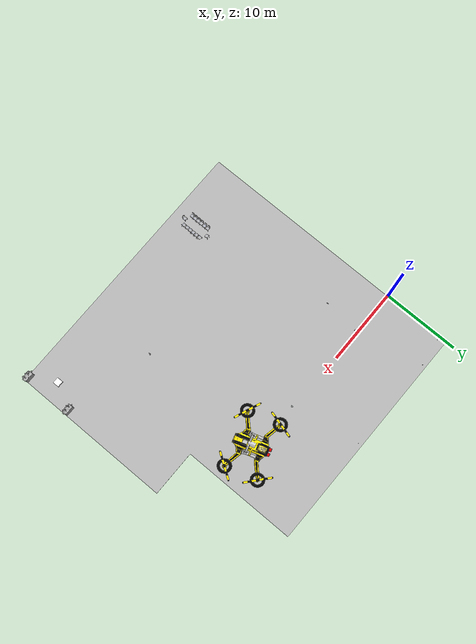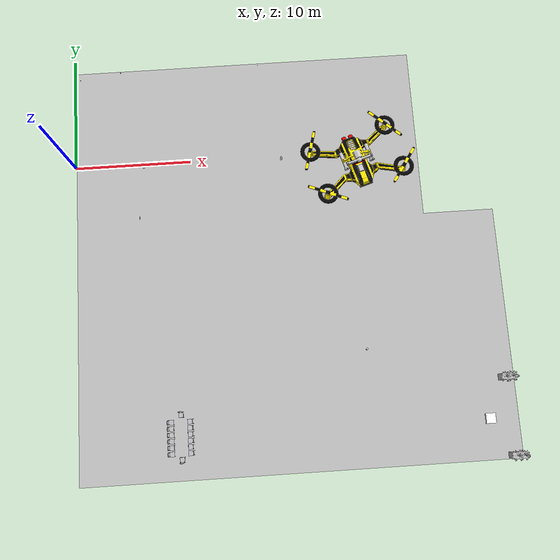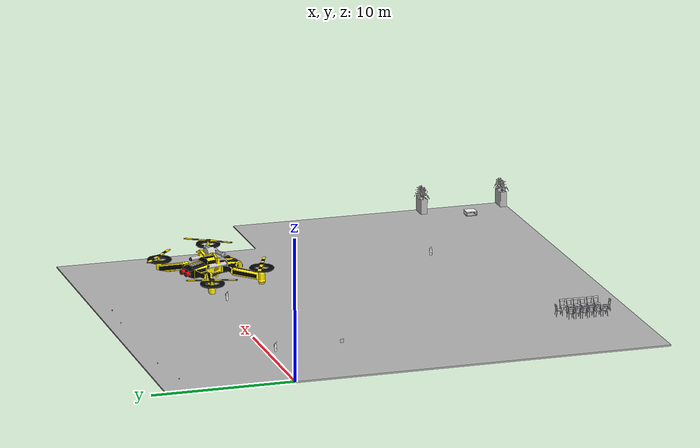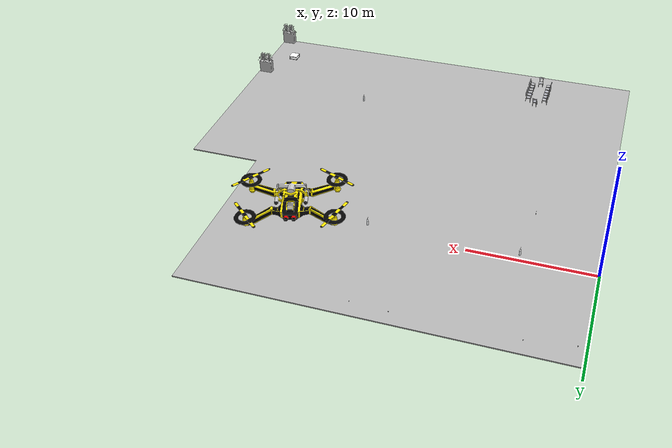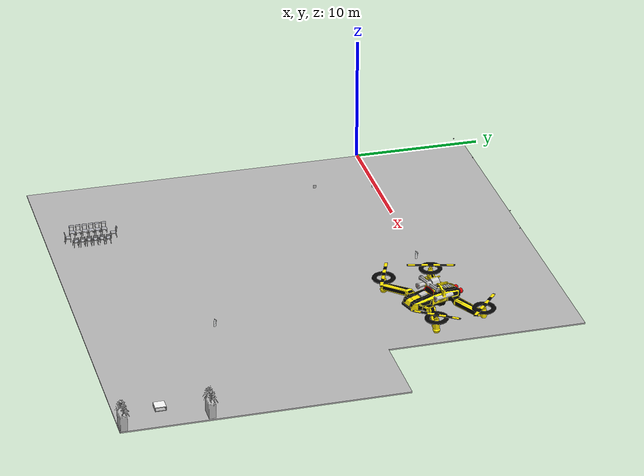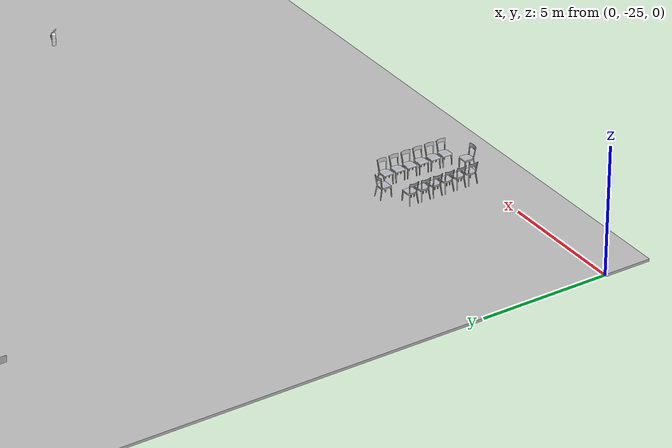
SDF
<sdf version="1.4">
 <world name="chironix">
  <include><uri>model://sun</uri></include>
  <physics name="default_physics" default="0" type="ode">
   <real_time_factor>0.25</real_time_factor>
   <real_time_update_rate>250</real_time_update_rate>
  </physics>
  <scene><ambient>0.4 0.4 0.4 1</ambient><background>0.7 0.7 0.7 1</background><shadows>0</shadows></scene>
  <include><uri>model://floor</uri><name>floor</name><pose>0.05 -9 -0.1 0 0 0</pose></include>
  <include><uri>model://fire</uri><name>lab_fire</name><pose>6.05 -0.5 0.25 0 0 1.5707</pose></include>
  <include><uri>model://fire</uri><name>workshop_fire</name><pose>18.05 -0.5 0.25 0 0 1.5707</pose></include>
  <include><uri>model://fire</uri><name>marketing_fire</name><pose>24.08 -17.50 0.25 0 0 1.5707</pose></include>
  <include><uri>model://mug</uri><name>aks_mug</name><pose>0.65 7.9 0.755 0 0 0</pose></include>
  <include><uri>model://mug</uri><name>kyle_mug</name><pose>4.2 8.4 0.755 0 0 0</pose></include>
  <include><uri>model://cup</uri><name>john_cup</name><pose>16.4 8.35 0.735 0 0 0</pose></include>
  <include><uri>model://cup</uri><name>adi_cup</name><pose>13.5 8.5 0.735 0 0 0</pose></include>
  <include><uri>model://drone</uri><name>done</name><pose>24.50 -1 0 0 0 0.3</pose></include>
  <include><uri>model://chair3</uri><name>chair_1</name><pose>7.8 -22.25 0 0 0 1.5707</pose></include>
  <include><uri>model://chair3</uri><name>chair_2</name><pose>7.8 -22.75 0 0 0 1.5707</pose></include>
  <include><uri>model://chair3</uri><name>chair_3</name><pose>7.8 -23.25 0 0 0 1.5707</pose></include>
  <include><uri>model://chair3</uri><name>chair_4</name><pose>7.8 -23.75 0 0 0 1.5707</pose></include>
  <include><uri>model://chair3</uri><name>chair_5</name><pose>7.8 -24.25 0 0 0 1.5707</pose></include>
  <include><uri>model://chair3</uri><name>chair_6</name><pose>7.8 -24.75 0 0 0 1.5707</pose></include>
  <include><uri>model://chair3</uri><name>chair_7</name><pose>9 -22.25 0 0 0 -1.5707</pose></include>
  <include><uri>model://chair3</uri><name>chair_8</name><pose>9 -22.75 0 0 0 -1.5707</pose></include>
  <include><uri>model://chair3</uri><name>chair_9</name><pose>9 -23.25 0 0 0 -1.5707</pose></include>
  <include><uri>model://chair3</uri><name>chair_10</name><pose>9 -23.75 0 0 0 -1.5707</pose></include>
  <include><uri>model://chair3</uri><name>chair_11</name><pose>9 -24.25 0 0 0 -1.5707</pose></include>
  <include><uri>model://chair3</uri><name>chair_12</name><pose>9 -24.75 0 0 0 -1.5707</pose></include>
  <include><uri>model://chair3</uri><name>chair_13</name><pose>8.45 -25.06 0 0 0 3.14</pose></include>
  <include><uri>model://chair3</uri><name>chair_14</name><pose>8.45 -21.86 0 0 0 0</pose></include>
  <include>
   <uri>model://flowerpot</uri>
   <name>flowerpot_1</name>
   <pose>34.750000 -26.850000 0 0 0 0</pose>
  </include>
  <include><uri>model://flowerpot</uri><name>flowerpot_2</name><pose>35.85 -20.1 0 0 0 3.14</pose></include>
  <include><uri>model://smallTable</uri><name>coffee_table</name><pose>34 -24 0 0 0 0</pose></include>
  <include><uri>model://marker3</uri><name>tag_3</name><pose>5.57 -5 0.55 0 0 0</pose></include>
 </world>
</sdf>

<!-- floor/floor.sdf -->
<sdf version="1.4">
    <model name="floor">
        <static>true</static>
        <link name="floor_link">

            <visual name="floor_mesh">
                <geometry>
                    <mesh>
                        <uri>model://floor/meshes/model.dae</uri>
                    </mesh>
                </geometry>
            </visual>

            <collision name="floor_collison">
                <pose>18 0 0.05</pose>
                <geometry>
                    <box>
                        <size>36 36 0.1</size>
                    </box>
                </geometry>
            </collision>
        </link>
    </model>
</sdf>

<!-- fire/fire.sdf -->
<sdf version="1.4">
    <model name="fire">
        <static>true</static>
        <link name="fire_link">

            <visual name="fire_mesh">
                <geometry>
                    <mesh>
                        <uri>model://fire/meshes/model.dae</uri>
                    </mesh>
                </geometry>
            </visual>

            <collision name="fire_collison">
                <pose>0.127737 0.053782 0.334999</pose>
                <geometry>
                    <box>
                        <size>0.25 0.25 0.6709</size>
                    </box>
                </geometry>
            </collision>
        </link>
    </model>
</sdf>

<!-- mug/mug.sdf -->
<sdf version="1.4">
    <model name="mug">
        <static>true</static>
        <link name="mug_link">

            <visual name="mug_mesh">
                <geometry>
                    <mesh>
                        <uri>model://mug/meshes/model.dae</uri>
                    </mesh>
                </geometry>
            </visual>

            <collision name="mug_collison">
                <geometry>
                    <box>
                        <size>1 1 1</size>
                    </box>
                </geometry>
            </collision>

        </link>
    </model>
</sdf>

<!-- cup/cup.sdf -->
<sdf version="1.4">
    <model name="cup">
        <static>true</static>
        <link name="cup_link">

            <visual name="cup_mesh">
                <geometry>
                    <mesh>
                        <uri>model://cup/meshes/model.dae</uri>
                    </mesh>
                </geometry>
            </visual>

            <collision name="cup_collison">
                <pose>0 0 0.070480 0 0 0</pose>
                <geometry>
                    <box>
                        <size>0.062209 0.057846 0.069314</size>
                    </box>
                </geometry>
            </collision>

        </link>
    </model>
</sdf>

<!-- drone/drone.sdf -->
<sdf version="1.4">
    <model name="drone">
        <static>true</static>
        <link name="drone_link">

            <visual name="drone_mesh">
                <geometry>
                    <mesh>
                        <uri>model://drone/meshes/model.dae</uri>
                    </mesh>
                </geometry>
            </visual>

            <collision name="drone_collison">
                <pose>-0.05 -0.05 0.824856</pose>
                <geometry>
                    <box>
                        <size>8.5 7 1.7344</size>
                    </box>
                </geometry>
            </collision>
        </link>
    </model>
</sdf>

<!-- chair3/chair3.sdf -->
<sdf version="1.4">
    <model name="chair3">
        <static>true</static>
        <link name="chair3_link">

            <visual name="chair3_mesh">
                <geometry>
                    <mesh>
                        <uri>model://chair3/meshes/model.dae</uri>
                    </mesh>
                </geometry>
            </visual>

            <collision name="chair3_collison">
                <pose>0 0.197271 0.443024 0 0 0</pose>
                <geometry>
                    <box>
                        <size>0.433466 0.502819 0.869444</size>
                    </box>
                </geometry>
            </collision>

        </link>
    </model>
</sdf>

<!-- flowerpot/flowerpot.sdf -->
<sdf version="1.4">
    <model name="flowerpot">
        <static>true</static>
        <link name="flowerpot_link">

            <visual name="flowerpot_mesh">
                <geometry>
                    <mesh>
                        <uri>model://flowerpot/meshes/model.dae</uri>
                    </mesh>
                </geometry>
            </visual>

            <collision name="flowerpot_collison">
                <pose>0.603162 0.248783 0.590120</pose>
                <geometry>
                    <box>
                        <size>1.201 0.531 1.168</size>
                    </box>
                </geometry>
            </collision>
        </link>
    </model>
</sdf>

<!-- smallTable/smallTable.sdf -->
<sdf version="1.4">
    <model name="smallTable">
        <static>true</static>
        <link name="smallTable_link">

            <visual name="smallTable_mesh">
                <geometry>
                    <mesh>
                        <uri>model://smallTable/meshes/model.dae</uri>
                    </mesh>
                </geometry>
            </visual>

            <collision name="smallTable_collison">
                <pose>-0.401371 0.3994 0.171102</pose>
                <geometry>
                    <box>
                        <size>0.8 0.8 0.3441</size>
                    </box>
                </geometry>
            </collision>
        </link>
    </model>
</sdf>

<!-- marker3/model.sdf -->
<sdf version="1.6">
  <model name="marker3">
    <static>true</static>
    <link name="link">
      <visual name="visual">
        <geometry>
          <mesh>
            <uri>model://marker3/meshes/marker3.dae</uri>
          <scale>0.52 0.52 0.52</scale></mesh>
        </geometry>
      </visual>
    </link>
  </model>
</sdf>
